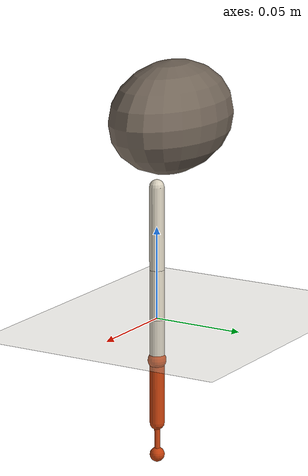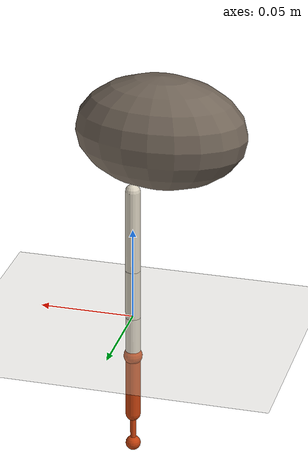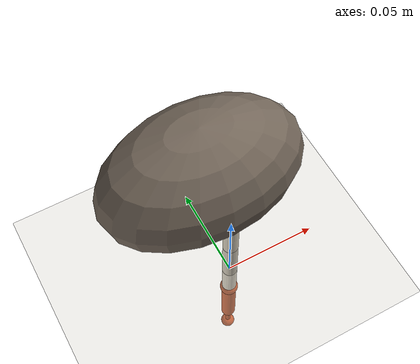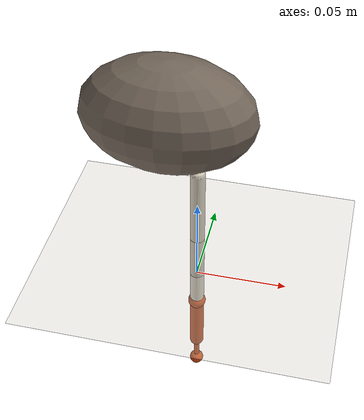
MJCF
<mujoco model="squirrel_leg">

  <compiler angle="degree" autolimits="true"/>

  <option timestep="2e-4" gravity="0 0 -9.81" integrator="implicitfast"/>

  <default>
    <joint type="hinge" axis="0 1 0"/>   <!-- no damping/armature: pinocchio does not import armature, and TO/WBC must see the same robot mujoco does -->
    <geom type="capsule" rgba=".85 .82 .75 1" friction="0.9 0.005 0.0001"/>
    <default class="foot">
      <geom rgba=".76 .25 .05 1" solref="0.008 1"/>   <!-- soft pads -->
    </default>
    <position kp="15" kv="0.15"/>            <!-- no forcerange: actuators are unlimited -->
  </default>

  <visual><headlight diffuse=".6 .6 .6"/><global azimuth="90" elevation="-15"/></visual>

  <worldbody>
    <light pos="0 0 1" dir="0 0 -1" diffuse=".8 .8 .8"/>
    <geom name="floor" type="plane" size="2 2 .05" rgba=".82 .80 .76 1"
          friction="0.9 0.005 0.0001"/>

    <body name="torso" pos="0 0 0.072">
      <joint name="slide_x" type="slide" axis="1 0 0"/>
      <joint name="slide_z" type="slide" axis="0 0 1"/>
      <joint name="pitch"   type="hinge" axis="0 1 0"/>
      <geom name="trunk" type="ellipsoid" pos="-0.015 0 0.035" size="0.045 0.028 0.030"
            mass="0.350" rgba=".45 .40 .35 1"/>

      <!-- TAIL:BEGIN -->
      <!-- TAIL:END -->

      <body name="femur">
        <joint name="hip" range="-50 55"/>
        <geom name="femur" fromto="0 0 0  0 0 -0.045" size="0.004" mass="0.0090"/>

        <body name="tibia" pos="0 0 -0.045">
          <joint name="knee" range="5 135"/>
          <geom name="tibia" fromto="0 0 0  0 0 -0.050" size="0.004" mass="0.0070"/>

          <!-- the ankle is the extra gear: plantigrade <-> digitigrade lives here -->
          <body name="metatarsus" pos="0 0 -0.050">
            <joint name="ankle" range="-160 -55"/>
            <geom name="metatarsus" class="foot" fromto="0 0 0  0 0 -0.035" size="0.004"
                  mass="0.0040"/>
            <geom name="heel_pad" class="foot" type="sphere" pos="0 0 0" size="0.005"
                  mass="0.0005"/>

            <body name="phalanx" pos="0 0 -0.035">
              <joint name="mtp" range="-70 20"/>
              <geom name="phalanx" class="foot" fromto="0 0 0  0 0 -0.018" size="0.0015"
                    mass="0.0015"/>
              <geom name="toe_pad" class="foot" type="sphere" pos="0 0 -0.018" size="0.004"
                    mass="0.0005"/>
            </body>
          </body>
        </body>
      </body>
    </body>
  </worldbody>

  <!-- The home pose: plantigrade, sole flat on the ground.  This is what the
       animal stands in, and every default in the code points here. -->
  <keyframe>
    <key name="plantigrade" qpos="0 0.00494515 0 0 0.188496 0.794125 -2.55167 0"/>
  </keyframe>

  <actuator>
    <position name="hip"   joint="hip"/>
    <position name="knee"  joint="knee"/>
    <position name="ankle" joint="ankle"/>
    <position name="mtp"   joint="mtp"/>
    <!-- TAILACT:BEGIN -->
    <!-- TAILACT:END -->
  </actuator>

  <sensor>
    <jointactuatorfrc name="tau_hip"   joint="hip"/>
    <jointactuatorfrc name="tau_knee"  joint="knee"/>
    <jointactuatorfrc name="tau_ankle" joint="ankle"/>
    <jointactuatorfrc name="tau_mtp"   joint="mtp"/>
    <!-- TAILSENS:BEGIN -->
    <!-- TAILSENS:END -->
  </sensor>
</mujoco>
